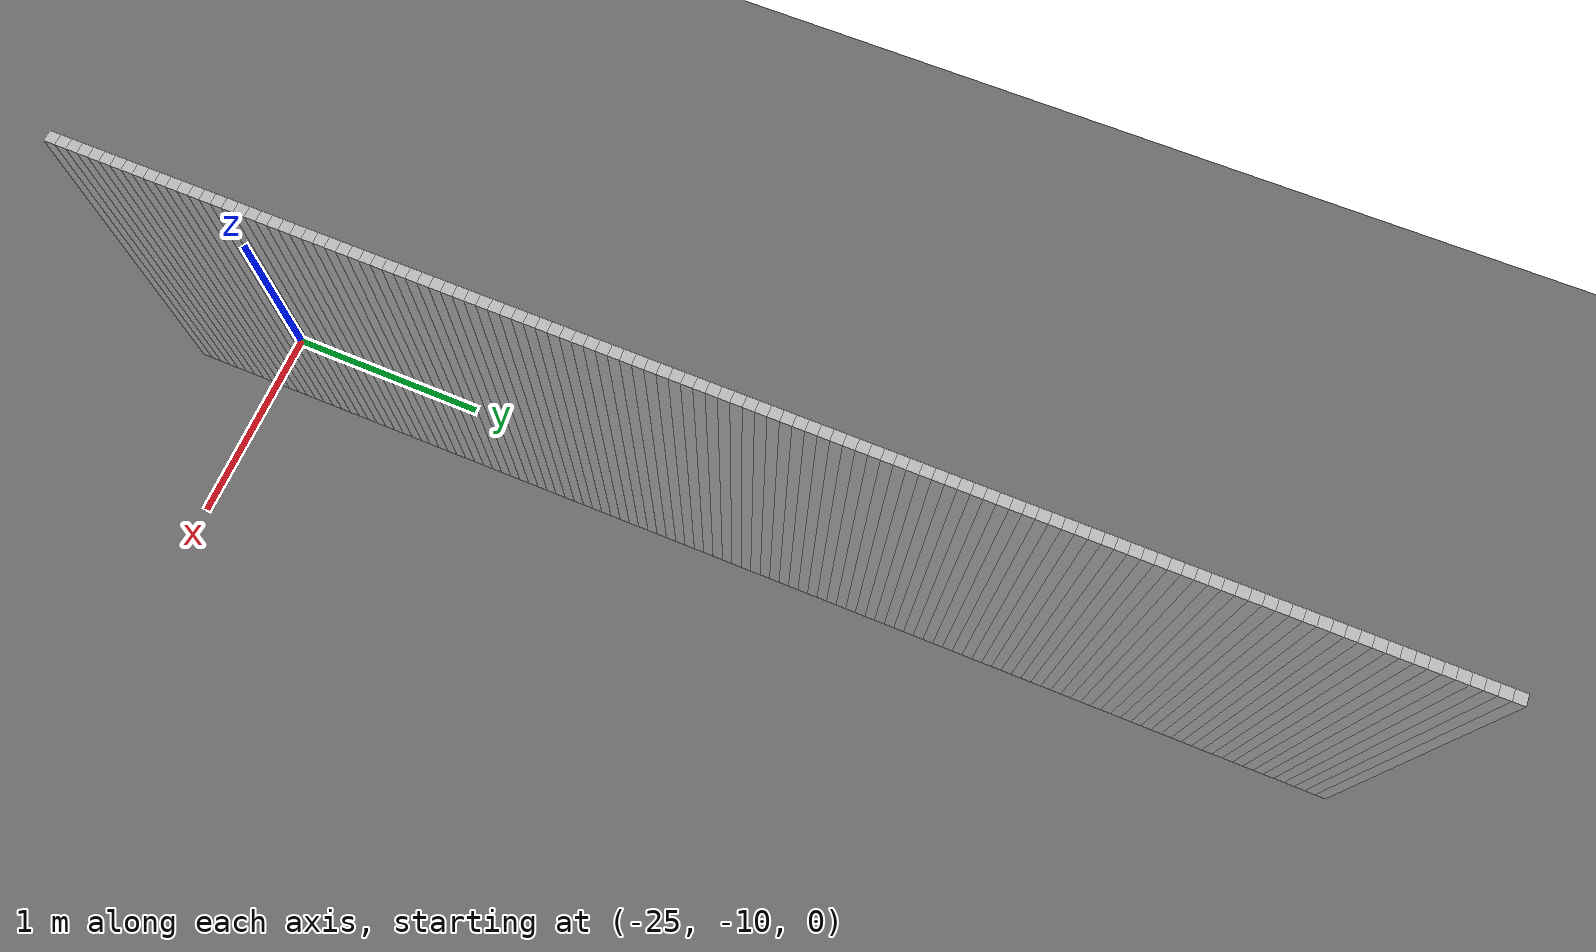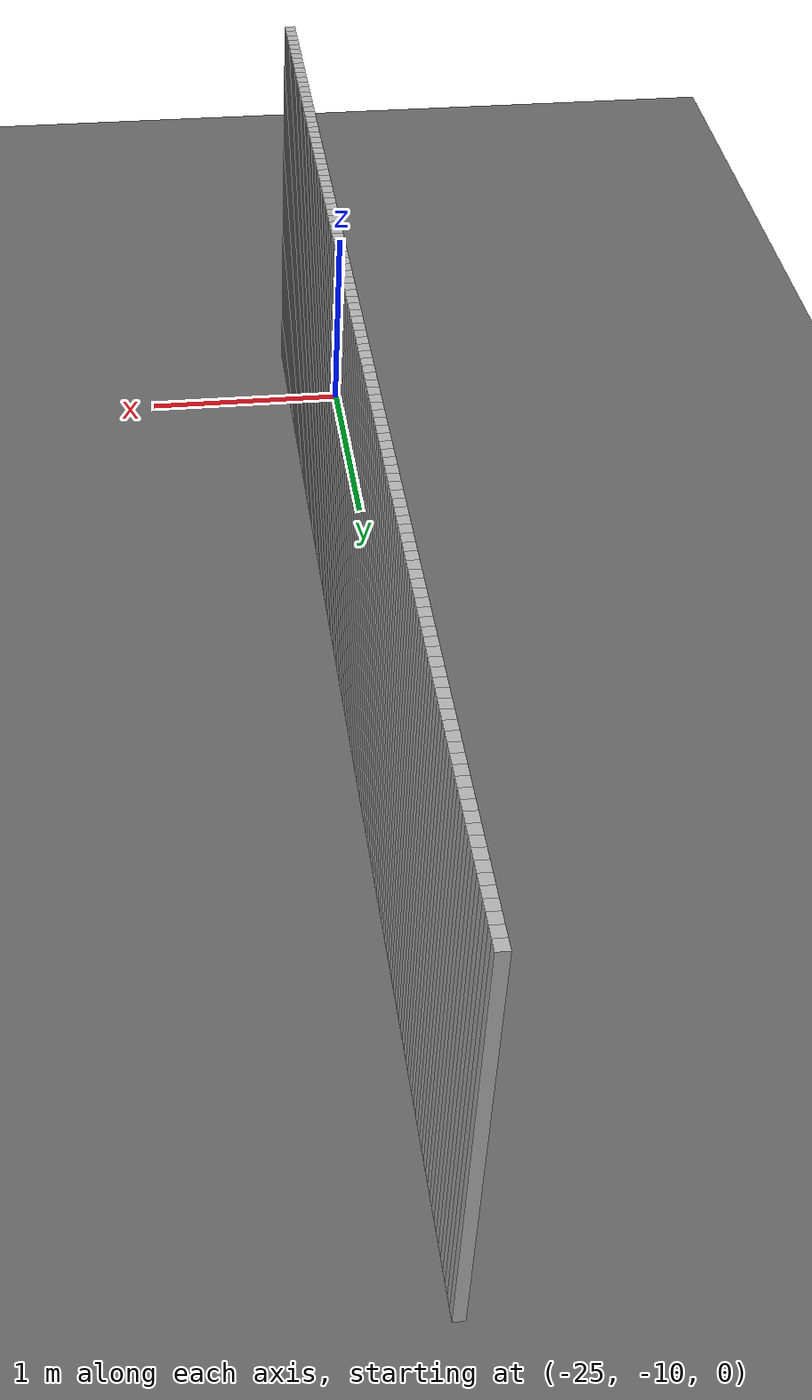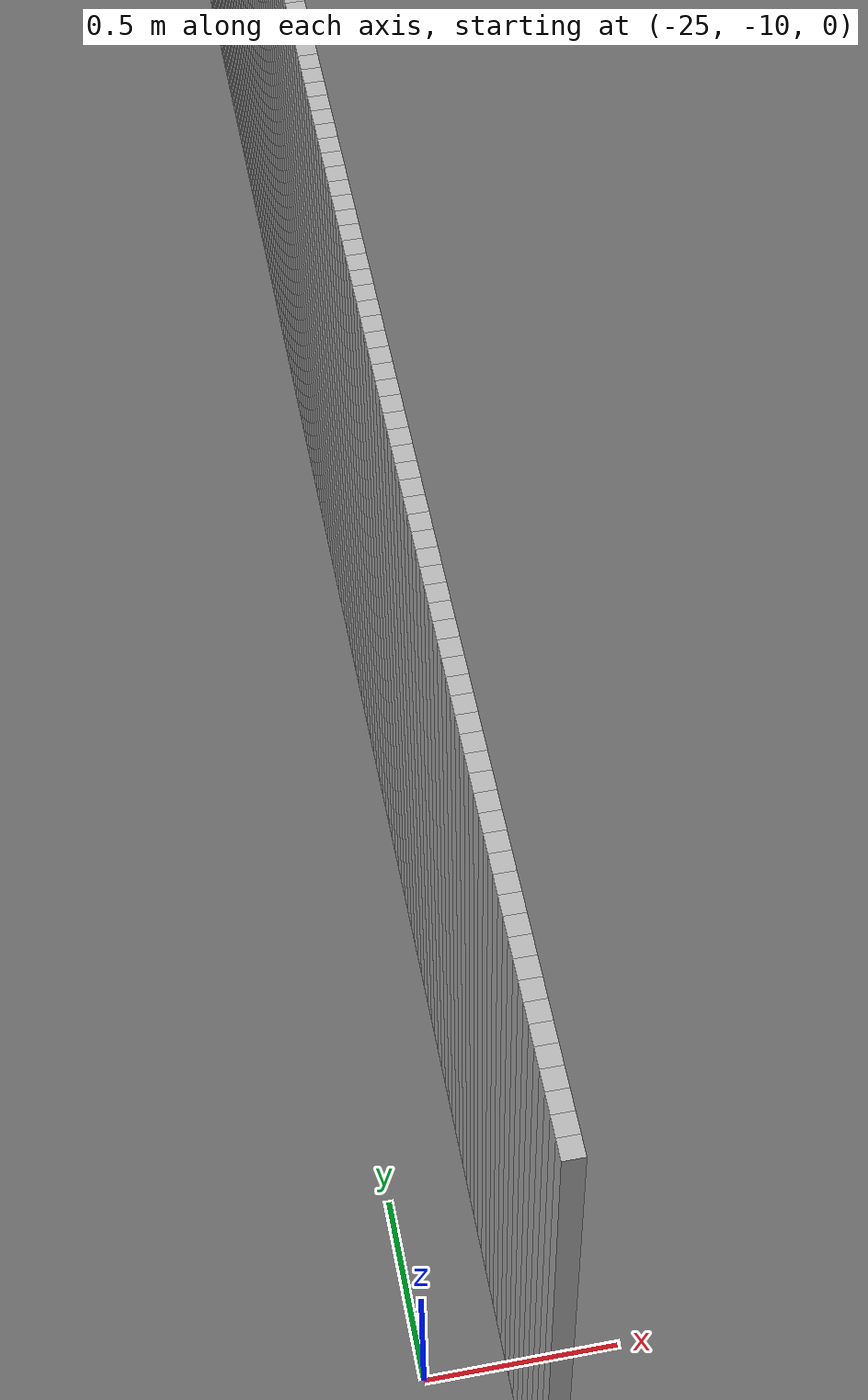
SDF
<sdf version="1.8">
 <world name="real_map">
  <model name="ground">
   <static>true</static>
   <link name="l">
    <collision name="c"><geometry><plane><normal>0 0 1</normal><size>100 100</size></plane></geometry></collision>
    <visual name="v">
     <geometry><plane><normal>0 0 1</normal><size>100 100</size></plane></geometry>
     <material><ambient>0.3 0.3 0.3 1</ambient><diffuse>0.4 0.4 0.4 1</diffuse></material>
    </visual>
   </link>
  </model>
  <model name="walls">
   <static>true</static>
   <link name="w1315">
    <pose>-24.766 -4.508 1.000 0 0 0</pose>
    <collision name="c"><geometry><box><size>0.050 0.050 2.000</size></box></geometry></collision>
    <visual name="v">
     <geometry><box><size>0.050 0.050 2.000</size></box></geometry>
     <material><ambient>0.7 0.7 0.7 1</ambient><diffuse>0.7 0.7 0.7 1</diffuse></material>
    </visual>
   </link>
   <link name="w1317">
    <pose>-24.766 -4.558 1.000 0 0 0</pose>
    <collision name="c"><geometry><box><size>0.050 0.050 2.000</size></box></geometry></collision>
    <visual name="v">
     <geometry><box><size>0.050 0.050 2.000</size></box></geometry>
     <material><ambient>0.7 0.7 0.7 1</ambient><diffuse>0.7 0.7 0.7 1</diffuse></material>
    </visual>
   </link>
   <link name="w1319">
    <pose>-24.766 -4.608 1.000 0 0 0</pose>
    <collision name="c"><geometry><box><size>0.050 0.050 2.000</size></box></geometry></collision>
    <visual name="v">
     <geometry><box><size>0.050 0.050 2.000</size></box></geometry>
     <material><ambient>0.7 0.7 0.7 1</ambient><diffuse>0.7 0.7 0.7 1</diffuse></material>
    </visual>
   </link>
   <link name="w1321">
    <pose>-24.766 -4.658 1.000 0 0 0</pose>
    <collision name="c"><geometry><box><size>0.050 0.050 2.000</size></box></geometry></collision>
    <visual name="v">
     <geometry><box><size>0.050 0.050 2.000</size></box></geometry>
     <material><ambient>0.7 0.7 0.7 1</ambient><diffuse>0.7 0.7 0.7 1</diffuse></material>
    </visual>
   </link>
   <link name="w1323">
    <pose>-24.766 -4.708 1.000 0 0 0</pose>
    <collision name="c"><geometry><box><size>0.050 0.050 2.000</size></box></geometry></collision>
    <visual name="v">
     <geometry><box><size>0.050 0.050 2.000</size></box></geometry>
     <material><ambient>0.7 0.7 0.7 1</ambient><diffuse>0.7 0.7 0.7 1</diffuse></material>
    </visual>
   </link>
   <link name="w1325">
    <pose>-24.766 -4.758 1.000 0 0 0</pose>
    <collision name="c"><geometry><box><size>0.050 0.050 2.000</size></box></geometry></collision>
    <visual name="v">
     <geometry><box><size>0.050 0.050 2.000</size></box></geometry>
     <material><ambient>0.7 0.7 0.7 1</ambient><diffuse>0.7 0.7 0.7 1</diffuse></material>
    </visual>
   </link>
   <link name="w1327">
    <pose>-24.766 -4.808 1.000 0 0 0</pose>
    <collision name="c"><geometry><box><size>0.050 0.050 2.000</size></box></geometry></collision>
    <visual name="v">
     <geometry><box><size>0.050 0.050 2.000</size></box></geometry>
     <material><ambient>0.7 0.7 0.7 1</ambient><diffuse>0.7 0.7 0.7 1</diffuse></material>
    </visual>
   </link>
   <link name="w1329">
    <pose>-24.766 -4.858 1.000 0 0 0</pose>
    <collision name="c"><geometry><box><size>0.050 0.050 2.000</size></box></geometry></collision>
    <visual name="v">
     <geometry><box><size>0.050 0.050 2.000</size></box></geometry>
     <material><ambient>0.7 0.7 0.7 1</ambient><diffuse>0.7 0.7 0.7 1</diffuse></material>
    </visual>
   </link>
   <link name="w1331">
    <pose>-24.766 -4.908 1.000 0 0 0</pose>
    <collision name="c"><geometry><box><size>0.050 0.050 2.000</size></box></geometry></collision>
    <visual name="v">
     <geometry><box><size>0.050 0.050 2.000</size></box></geometry>
     <material><ambient>0.7 0.7 0.7 1</ambient><diffuse>0.7 0.7 0.7 1</diffuse></material>
    </visual>
   </link>
   <link name="w1333">
    <pose>-24.766 -4.958 1.000 0 0 0</pose>
    <collision name="c"><geometry><box><size>0.050 0.050 2.000</size></box></geometry></collision>
    <visual name="v">
     <geometry><box><size>0.050 0.050 2.000</size></box></geometry>
     <material><ambient>0.7 0.7 0.7 1</ambient><diffuse>0.7 0.7 0.7 1</diffuse></material>
    </visual>
   </link>
   <link name="w1335">
    <pose>-24.766 -5.008 1.000 0 0 0</pose>
    <collision name="c"><geometry><box><size>0.050 0.050 2.000</size></box></geometry></collision>
    <visual name="v">
     <geometry><box><size>0.050 0.050 2.000</size></box></geometry>
     <material><ambient>0.7 0.7 0.7 1</ambient><diffuse>0.7 0.7 0.7 1</diffuse></material>
    </visual>
   </link>
   <link name="w1337">
    <pose>-24.766 -5.058 1.000 0 0 0</pose>
    <collision name="c"><geometry><box><size>0.050 0.050 2.000</size></box></geometry></collision>
    <visual name="v">
     <geometry><box><size>0.050 0.050 2.000</size></box></geometry>
     <material><ambient>0.7 0.7 0.7 1</ambient><diffuse>0.7 0.7 0.7 1</diffuse></material>
    </visual>
   </link>
   <link name="w1339">
    <pose>-24.766 -5.108 1.000 0 0 0</pose>
    <collision name="c"><geometry><box><size>0.050 0.050 2.000</size></box></geometry></collision>
    <visual name="v">
     <geometry><box><size>0.050 0.050 2.000</size></box></geometry>
     <material><ambient>0.7 0.7 0.7 1</ambient><diffuse>0.7 0.7 0.7 1</diffuse></material>
    </visual>
   </link>
   <link name="w1341">
    <pose>-24.766 -5.158 1.000 0 0 0</pose>
    <collision name="c"><geometry><box><size>0.050 0.050 2.000</size></box></geometry></collision>
    <visual name="v">
     <geometry><box><size>0.050 0.050 2.000</size></box></geometry>
     <material><ambient>0.7 0.7 0.7 1</ambient><diffuse>0.7 0.7 0.7 1</diffuse></material>
    </visual>
   </link>
   <link name="w1343">
    <pose>-24.766 -5.208 1.000 0 0 0</pose>
    <collision name="c"><geometry><box><size>0.050 0.050 2.000</size></box></geometry></collision>
    <visual name="v">
     <geometry><box><size>0.050 0.050 2.000</size></box></geometry>
     <material><ambient>0.7 0.7 0.7 1</ambient><diffuse>0.7 0.7 0.7 1</diffuse></material>
    </visual>
   </link>
   <link name="w1345">
    <pose>-24.766 -5.258 1.000 0 0 0</pose>
    <collision name="c"><geometry><box><size>0.050 0.050 2.000</size></box></geometry></collision>
    <visual name="v">
     <geometry><box><size>0.050 0.050 2.000</size></box></geometry>
     <material><ambient>0.7 0.7 0.7 1</ambient><diffuse>0.7 0.7 0.7 1</diffuse></material>
    </visual>
   </link>
   <link name="w1347">
    <pose>-24.766 -5.308 1.000 0 0 0</pose>
    <collision name="c"><geometry><box><size>0.050 0.050 2.000</size></box></geometry></collision>
    <visual name="v">
     <geometry><box><size>0.050 0.050 2.000</size></box></geometry>
     <material><ambient>0.7 0.7 0.7 1</ambient><diffuse>0.7 0.7 0.7 1</diffuse></material>
    </visual>
   </link>
   <link name="w1349">
    <pose>-24.766 -5.358 1.000 0 0 0</pose>
    <collision name="c"><geometry><box><size>0.050 0.050 2.000</size></box></geometry></collision>
    <visual name="v">
     <geometry><box><size>0.050 0.050 2.000</size></box></geometry>
     <material><ambient>0.7 0.7 0.7 1</ambient><diffuse>0.7 0.7 0.7 1</diffuse></material>
    </visual>
   </link>
   <link name="w1351">
    <pose>-24.766 -5.408 1.000 0 0 0</pose>
    <collision name="c"><geometry><box><size>0.050 0.050 2.000</size></box></geometry></collision>
    <visual name="v">
     <geometry><box><size>0.050 0.050 2.000</size></box></geometry>
     <material><ambient>0.7 0.7 0.7 1</ambient><diffuse>0.7 0.7 0.7 1</diffuse></material>
    </visual>
   </link>
   <link name="w1353">
    <pose>-24.766 -5.458 1.000 0 0 0</pose>
    <collision name="c"><geometry><box><size>0.050 0.050 2.000</size></box></geometry></collision>
    <visual name="v">
     <geometry><box><size>0.050 0.050 2.000</size></box></geometry>
     <material><ambient>0.7 0.7 0.7 1</ambient><diffuse>0.7 0.7 0.7 1</diffuse></material>
    </visual>
   </link>
   <link name="w1355">
    <pose>-24.766 -5.508 1.000 0 0 0</pose>
    <collision name="c"><geometry><box><size>0.050 0.050 2.000</size></box></geometry></collision>
    <visual name="v">
     <geometry><box><size>0.050 0.050 2.000</size></box></geometry>
     <material><ambient>0.7 0.7 0.7 1</ambient><diffuse>0.7 0.7 0.7 1</diffuse></material>
    </visual>
   </link>
   <link name="w1357">
    <pose>-24.766 -5.558 1.000 0 0 0</pose>
    <collision name="c"><geometry><box><size>0.050 0.050 2.000</size></box></geometry></collision>
    <visual name="v">
     <geometry><box><size>0.050 0.050 2.000</size></box></geometry>
     <material><ambient>0.7 0.7 0.7 1</ambient><diffuse>0.7 0.7 0.7 1</diffuse></material>
    </visual>
   </link>
   <link name="w1359">
    <pose>-24.766 -5.608 1.000 0 0 0</pose>
    <collision name="c"><geometry><box><size>0.050 0.050 2.000</size></box></geometry></collision>
    <visual name="v">
     <geometry><box><size>0.050 0.050 2.000</size></box></geometry>
     <material><ambient>0.7 0.7 0.7 1</ambient><diffuse>0.7 0.7 0.7 1</diffuse></material>
    </visual>
   </link>
   <link name="w1361">
    <pose>-24.766 -5.658 1.000 0 0 0</pose>
    <collision name="c"><geometry><box><size>0.050 0.050 2.000</size></box></geometry></collision>
    <visual name="v">
     <geometry><box><size>0.050 0.050 2.000</size></box></geometry>
     <material><ambient>0.7 0.7 0.7 1</ambient><diffuse>0.7 0.7 0.7 1</diffuse></material>
    </visual>
   </link>
   <link name="w1363">
    <pose>-24.766 -5.708 1.000 0 0 0</pose>
    <collision name="c"><geometry><box><size>0.050 0.050 2.000</size></box></geometry></collision>
    <visual name="v">
     <geometry><box><size>0.050 0.050 2.000</size></box></geometry>
     <material><ambient>0.7 0.7 0.7 1</ambient><diffuse>0.7 0.7 0.7 1</diffuse></material>
    </visual>
   </link>
   <link name="w1365">
    <pose>-24.766 -5.758 1.000 0 0 0</pose>
    <collision name="c"><geometry><box><size>0.050 0.050 2.000</size></box></geometry></collision>
    <visual name="v">
     <geometry><box><size>0.050 0.050 2.000</size></box></geometry>
     <material><ambient>0.7 0.7 0.7 1</ambient><diffuse>0.7 0.7 0.7 1</diffuse></material>
    </visual>
   </link>
   <link name="w1367">
    <pose>-24.766 -5.808 1.000 0 0 0</pose>
    <collision name="c"><geometry><box><size>0.050 0.050 2.000</size></box></geometry></collision>
    <visual name="v">
     <geometry><box><size>0.050 0.050 2.000</size></box></geometry>
     <material><ambient>0.7 0.7 0.7 1</ambient><diffuse>0.7 0.7 0.7 1</diffuse></material>
    </visual>
   </link>
   <link name="w1369">
    <pose>-24.766 -5.858 1.000 0 0 0</pose>
    <collision name="c"><geometry><box><size>0.050 0.050 2.000</size></box></geometry></collision>
    <visual name="v">
     <geometry><box><size>0.050 0.050 2.000</size></box></geometry>
     <material><ambient>0.7 0.7 0.7 1</ambient><diffuse>0.7 0.7 0.7 1</diffuse></material>
    </visual>
   </link>
   <link name="w1371">
    <pose>-24.766 -5.908 1.000 0 0 0</pose>
    <collision name="c"><geometry><box><size>0.050 0.050 2.000</size></box></geometry></collision>
    <visual name="v">
     <geometry><box><size>0.050 0.050 2.000</size></box></geometry>
     <material><ambient>0.7 0.7 0.7 1</ambient><diffuse>0.7 0.7 0.7 1</diffuse></material>
    </visual>
   </link>
   <link name="w1373">
    <pose>-24.766 -5.958 1.000 0 0 0</pose>
    <collision name="c"><geometry><box><size>0.050 0.050 2.000</size></box></geometry></collision>
    <visual name="v">
     <geometry><box><size>0.050 0.050 2.000</size></box></geometry>
     <material><ambient>0.7 0.7 0.7 1</ambient><diffuse>0.7 0.7 0.7 1</diffuse></material>
    </visual>
   </link>
   <link name="w1375">
    <pose>-24.766 -6.008 1.000 0 0 0</pose>
    <collision name="c"><geometry><box><size>0.050 0.050 2.000</size></box></geometry></collision>
    <visual name="v">
     <geometry><box><size>0.050 0.050 2.000</size></box></geometry>
     <material><ambient>0.7 0.7 0.7 1</ambient><diffuse>0.7 0.7 0.7 1</diffuse></material>
    </visual>
   </link>
   <link name="w1377">
    <pose>-24.766 -6.058 1.000 0 0 0</pose>
    <collision name="c"><geometry><box><size>0.050 0.050 2.000</size></box></geometry></collision>
    <visual name="v">
     <geometry><box><size>0.050 0.050 2.000</size></box></geometry>
     <material><ambient>0.7 0.7 0.7 1</ambient><diffuse>0.7 0.7 0.7 1</diffuse></material>
    </visual>
   </link>
   <link name="w1379">
    <pose>-24.766 -6.108 1.000 0 0 0</pose>
    <collision name="c"><geometry><box><size>0.050 0.050 2.000</size></box></geometry></collision>
    <visual name="v">
     <geometry><box><size>0.050 0.050 2.000</size></box></geometry>
     <material><ambient>0.7 0.7 0.7 1</ambient><diffuse>0.7 0.7 0.7 1</diffuse></material>
    </visual>
   </link>
   <link name="w1381">
    <pose>-24.766 -6.158 1.000 0 0 0</pose>
    <collision name="c"><geometry><box><size>0.050 0.050 2.000</size></box></geometry></collision>
    <visual name="v">
     <geometry><box><size>0.050 0.050 2.000</size></box></geometry>
     <material><ambient>0.7 0.7 0.7 1</ambient><diffuse>0.7 0.7 0.7 1</diffuse></material>
    </visual>
   </link>
   <link name="w1383">
    <pose>-24.766 -6.208 1.000 0 0 0</pose>
    <collision name="c"><geometry><box><size>0.050 0.050 2.000</size></box></geometry></collision>
    <visual name="v">
     <geometry><box><size>0.050 0.050 2.000</size></box></geometry>
     <material><ambient>0.7 0.7 0.7 1</ambient><diffuse>0.7 0.7 0.7 1</diffuse></material>
    </visual>
   </link>
   <link name="w1385">
    <pose>-24.766 -6.258 1.000 0 0 0</pose>
    <collision name="c"><geometry><box><size>0.050 0.050 2.000</size></box></geometry></collision>
    <visual name="v">
     <geometry><box><size>0.050 0.050 2.000</size></box></geometry>
     <material><ambient>0.7 0.7 0.7 1</ambient><diffuse>0.7 0.7 0.7 1</diffuse></material>
    </visual>
   </link>
   <link name="w1387">
    <pose>-24.766 -6.308 1.000 0 0 0</pose>
    <collision name="c"><geometry><box><size>0.050 0.050 2.000</size></box></geometry></collision>
    <visual name="v">
     <geometry><box><size>0.050 0.050 2.000</size></box></geometry>
     <material><ambient>0.7 0.7 0.7 1</ambient><diffuse>0.7 0.7 0.7 1</diffuse></material>
    </visual>
   </link>
   <link name="w1389">
    <pose>-24.766 -6.358 1.000 0 0 0</pose>
    <collision name="c"><geometry><box><size>0.050 0.050 2.000</size></box></geometry></collision>
    <visual name="v">
     <geometry><box><size>0.050 0.050 2.000</size></box></geometry>
     <material><ambient>0.7 0.7 0.7 1</ambient><diffuse>0.7 0.7 0.7 1</diffuse></material>
    </visual>
   </link>
   <link name="w1391">
    <pose>-24.766 -6.408 1.000 0 0 0</pose>
    <collision name="c"><geometry><box><size>0.050 0.050 2.000</size></box></geometry></collision>
    <visual name="v">
     <geometry><box><size>0.050 0.050 2.000</size></box></geometry>
     <material><ambient>0.7 0.7 0.7 1</ambient><diffuse>0.7 0.7 0.7 1</diffuse></material>
    </visual>
   </link>
   <link name="w1393">
    <pose>-24.766 -6.458 1.000 0 0 0</pose>
    <collision name="c"><geometry><box><size>0.050 0.050 2.000</size></box></geometry></collision>
    <visual name="v">
     <geometry><box><size>0.050 0.050 2.000</size></box></geometry>
     <material><ambient>0.7 0.7 0.7 1</ambient><diffuse>0.7 0.7 0.7 1</diffuse></material>
    </visual>
   </link>
   <link name="w1395">
    <pose>-24.766 -6.508 1.000 0 0 0</pose>
    <collision name="c"><geometry><box><size>0.050 0.050 2.000</size></box></geometry></collision>
    <visual name="v">
     <geometry><box><size>0.050 0.050 2.000</size></box></geometry>
     <material><ambient>0.7 0.7 0.7 1</ambient><diffuse>0.7 0.7 0.7 1</diffuse></material>
    </visual>
   </link>
   <link name="w1397">
    <pose>-24.766 -6.558 1.000 0 0 0</pose>
    <collision name="c"><geometry><box><size>0.050 0.050 2.000</size></box></geometry></collision>
    <visual name="v">
     <geometry><box><size>0.050 0.050 2.000</size></box></geometry>
     <material><ambient>0.7 0.7 0.7 1</ambient><diffuse>0.7 0.7 0.7 1</diffuse></material>
    </visual>
   </link>
   <link name="w1399">
    <pose>-24.766 -6.608 1.000 0 0 0</pose>
    <collision name="c"><geometry><box><size>0.050 0.050 2.000</size></box></geometry></collision>
    <visual name="v">
     <geometry><box><size>0.050 0.050 2.000</size></box></geometry>
     <material><ambient>0.7 0.7 0.7 1</ambient><diffuse>0.7 0.7 0.7 1</diffuse></material>
    </visual>
   </link>
   <link name="w1401">
    <pose>-24.766 -6.658 1.000 0 0 0</pose>
    <collision name="c"><geometry><box><size>0.050 0.050 2.000</size></box></geometry></collision>
    <visual name="v">
     <geometry><box><size>0.050 0.050 2.000</size></box></geometry>
     <material><ambient>0.7 0.7 0.7 1</ambient><diffuse>0.7 0.7 0.7 1</diffuse></material>
    </visual>
   </link>
   <link name="w1403">
    <pose>-24.766 -6.708 1.000 0 0 0</pose>
    <collision name="c"><geometry><box><size>0.050 0.050 2.000</size></box></geometry></collision>
    <visual name="v">
     <geometry><box><size>0.050 0.050 2.000</size></box></geometry>
     <material><ambient>0.7 0.7 0.7 1</ambient><diffuse>0.7 0.7 0.7 1</diffuse></material>
    </visual>
   </link>
   <link name="w1405">
    <pose>-24.766 -6.758 1.000 0 0 0</pose>
    <collision name="c"><geometry><box><size>0.050 0.050 2.000</size></box></geometry></collision>
    <visual name="v">
     <geometry><box><size>0.050 0.050 2.000</size></box></geometry>
     <material><ambient>0.7 0.7 0.7 1</ambient><diffuse>0.7 0.7 0.7 1</diffuse></material>
    </visual>
   </link>
   <link name="w1407">
    <pose>-24.766 -6.808 1.000 0 0 0</pose>
    <collision name="c"><geometry><box><size>0.050 0.050 2.000</size></box></geometry></collision>
    <visual name="v">
     <geometry><box><size>0.050 0.050 2.000</size></box></geometry>
     <material><ambient>0.7 0.7 0.7 1</ambient><diffuse>0.7 0.7 0.7 1</diffuse></material>
    </visual>
   </link>
   <link name="w1409">
    <pose>-24.766 -6.858 1.000 0 0 0</pose>
    <collision name="c"><geometry><box><size>0.050 0.050 2.000</size></box></geometry></collision>
    <visual name="v">
     <geometry><box><size>0.050 0.050 2.000</size></box></geometry>
     <material><ambient>0.7 0.7 0.7 1</ambient><diffuse>0.7 0.7 0.7 1</diffuse></material>
    </visual>
   </link>
   <link name="w1411">
    <pose>-24.766 -6.908 1.000 0 0 0</pose>
    <collision name="c"><geometry><box><size>0.050 0.050 2.000</size></box></geometry></collision>
    <visual name="v">
     <geometry><box><size>0.050 0.050 2.000</size></box></geometry>
     <material><ambient>0.7 0.7 0.7 1</ambient><diffuse>0.7 0.7 0.7 1</diffuse></material>
    </visual>
   </link>
   <link name="w1413">
    <pose>-24.766 -6.958 1.000 0 0 0</pose>
    <collision name="c"><geometry><box><size>0.050 0.050 2.000</size></box></geometry></collision>
    <visual name="v">
     <geometry><box><size>0.050 0.050 2.000</size></box></geometry>
     <material><ambient>0.7 0.7 0.7 1</ambient><diffuse>0.7 0.7 0.7 1</diffuse></material>
    </visual>
   </link>
   <link name="w1415">
    <pose>-24.766 -7.008 1.000 0 0 0</pose>
    <collision name="c"><geometry><box><size>0.050 0.050 2.000</size></box></geometry></collision>
    <visual name="v">
     <geometry><box><size>0.050 0.050 2.000</size></box></geometry>
     <material><ambient>0.7 0.7 0.7 1</ambient><diffuse>0.7 0.7 0.7 1</diffuse></material>
    </visual>
   </link>
   <link name="w1417">
    <pose>-24.766 -7.058 1.000 0 0 0</pose>
    <collision name="c"><geometry><box><size>0.050 0.050 2.000</size></box></geometry></collision>
    <visual name="v">
     <geometry><box><size>0.050 0.050 2.000</size></box></geometry>
     <material><ambient>0.7 0.7 0.7 1</ambient><diffuse>0.7 0.7 0.7 1</diffuse></material>
    </visual>
   </link>
   <link name="w1419">
    <pose>-24.766 -7.108 1.000 0 0 0</pose>
    <collision name="c"><geometry><box><size>0.050 0.050 2.000</size></box></geometry></collision>
    <visual name="v">
     <geometry><box><size>0.050 0.050 2.000</size></box></geometry>
     <material><ambient>0.7 0.7 0.7 1</ambient><diffuse>0.7 0.7 0.7 1</diffuse></material>
    </visual>
   </link>
   <link name="w1421">
    <pose>-24.766 -7.158 1.000 0 0 0</pose>
    <collision name="c"><geometry><box><size>0.050 0.050 2.000</size></box></geometry></collision>
    <visual name="v">
     <geometry><box><size>0.050 0.050 2.000</size></box></geometry>
     <material><ambient>0.7 0.7 0.7 1</ambient><diffuse>0.7 0.7 0.7 1</diffuse></material>
    </visual>
   </link>
   <link name="w1423">
    <pose>-24.766 -7.208 1.000 0 0 0</pose>
    <collision name="c"><geometry><box><size>0.050 0.050 2.000</size></box></geometry></collision>
    <visual name="v">
     <geometry><box><size>0.050 0.050 2.000</size></box></geometry>
     <material><ambient>0.7 0.7 0.7 1</ambient><diffuse>0.7 0.7 0.7 1</diffuse></material>
    </visual>
   </link>
   <link name="w1425">
    <pose>-24.766 -7.258 1.000 0 0 0</pose>
    <collision name="c"><geometry><box><size>0.050 0.050 2.000</size></box></geometry></collision>
    <visual name="v">
     <geometry><box><size>0.050 0.050 2.000</size></box></geometry>
     <material><ambient>0.7 0.7 0.7 1</ambient><diffuse>0.7 0.7 0.7 1</diffuse></material>
    </visual>
   </link>
   <link name="w1427">
    <pose>-24.766 -7.308 1.000 0 0 0</pose>
    <collision name="c"><geometry><box><size>0.050 0.050 2.000</size></box></geometry></collision>
    <visual name="v">
     <geometry><box><size>0.050 0.050 2.000</size></box></geometry>
     <material><ambient>0.7 0.7 0.7 1</ambient><diffuse>0.7 0.7 0.7 1</diffuse></material>
    </visual>
   </link>
   <link name="w1429">
    <pose>-24.766 -7.358 1.000 0 0 0</pose>
    <collision name="c"><geometry><box><size>0.050 0.050 2.000</size></box></geometry></collision>
    <visual name="v">
     <geometry><box><size>0.050 0.050 2.000</size></box></geometry>
     <material><ambient>0.7 0.7 0.7 1</ambient><diffuse>0.7 0.7 0.7 1</diffuse></material>
    </visual>
   </link>
   <link name="w1431">
    <pose>-24.766 -7.408 1.000 0 0 0</pose>
    <collision name="c"><geometry><box><size>0.050 0.050 2.000</size></box></geometry></collision>
    <visual name="v">
     <geometry><box><size>0.050 0.050 2.000</size></box></geometry>
     <material><ambient>0.7 0.7 0.7 1</ambient><diffuse>0.7 0.7 0.7 1</diffuse></material>
    </visual>
   </link>
   <link name="w1433">
    <pose>-24.766 -7.458 1.000 0 0 0</pose>
    <collision name="c"><geometry><box><size>0.050 0.050 2.000</size></box></geometry></collision>
    <visual name="v">
     <geometry><box><size>0.050 0.050 2.000</size></box></geometry>
     <material><ambient>0.7 0.7 0.7 1</ambient><diffuse>0.7 0.7 0.7 1</diffuse></material>
    </visual>
   </link>
   <link name="w1435">
    <pose>-24.766 -7.508 1.000 0 0 0</pose>
    <collision name="c"><geometry><box><size>0.050 0.050 2.000</size></box></geometry></collision>
    <visual name="v">
     <geometry><box><size>0.050 0.050 2.000</size></box></geometry>
     <material><ambient>0.7 0.7 0.7 1</ambient><diffuse>0.7 0.7 0.7 1</diffuse></material>
    </visual>
   </link>
   <link name="w1437">
    <pose>-24.766 -7.558 1.000 0 0 0</pose>
    <collision name="c"><geometry><box><size>0.050 0.050 2.000</size></box></geometry></collision>
    <visual name="v">
     <geometry><box><size>0.050 0.050 2.000</size></box></geometry>
     <material><ambient>0.7 0.7 0.7 1</ambient><diffuse>0.7 0.7 0.7 1</diffuse></material>
    </visual>
   </link>
   <link name="w1439">
    <pose>-24.766 -7.608 1.000 0 0 0</pose>
    <collision name="c"><geometry><box><size>0.050 0.050 2.000</size></box></geometry></collision>
    <visual name="v">
     <geometry><box><size>0.050 0.050 2.000</size></box></geometry>
     <material><ambient>0.7 0.7 0.7 1</ambient><diffuse>0.7 0.7 0.7 1</diffuse></material>
    </visual>
   </link>
   <link name="w1441">
    <pose>-24.766 -7.658 1.000 0 0 0</pose>
    <collision name="c"><geometry><box><size>0.050 0.050 2.000</size></box></geometry></collision>
    <visual name="v">
     <geometry><box><size>0.050 0.050 2.000</size></box></geometry>
     <material><ambient>0.7 0.7 0.7 1</ambient><diffuse>0.7 0.7 0.7 1</diffuse></material>
    </visual>
   </link>
   <link name="w1443">
    <pose>-24.766 -7.708 1.000 0 0 0</pose>
    <collision name="c"><geometry><box><size>0.050 0.050 2.000</size></box></geometry></collision>
    <visual name="v">
     <geometry><box><size>0.050 0.050 2.000</size></box></geometry>
     <material><ambient>0.7 0.7 0.7 1</ambient><diffuse>0.7 0.7 0.7 1</diffuse></material>
    </visual>
   </link>
   <link name="w1445">
    <pose>-24.766 -7.758 1.000 0 0 0</pose>
    <collision name="c"><geometry><box><size>0.050 0.050 2.000</size></box></geometry></collision>
    <visual name="v">
     <geometry><box><size>0.050 0.050 2.000</size></box></geometry>
     <material><ambient>0.7 0.7 0.7 1</ambient><diffuse>0.7 0.7 0.7 1</diffuse></material>
    </visual>
   </link>
   <link name="w1447">
    <pose>-24.766 -7.808 1.000 0 0 0</pose>
    <collision name="c"><geometry><box><size>0.050 0.050 2.000</size></box></geometry></collision>
    <visual name="v">
     <geometry><box><size>0.050 0.050 2.000</size></box></geometry>
     <material><ambient>0.7 0.7 0.7 1</ambient><diffuse>0.7 0.7 0.7 1</diffuse></material>
    </visual>
   </link>
   <link name="w1449">
    <pose>-24.766 -7.858 1.000 0 0 0</pose>
    <collision name="c"><geometry><box><size>0.050 0.050 2.000</size></box></geometry></collision>
    <visual name="v">
     <geometry><box><size>0.050 0.050 2.000</size></box></geometry>
     <material><ambient>0.7 0.7 0.7 1</ambient><diffuse>0.7 0.7 0.7 1</diffuse></material>
    </visual>
   </link>
   <link name="w1451">
    <pose>-24.766 -7.908 1.000 0 0 0</pose>
    <collision name="c"><geometry><box><size>0.050 0.050 2.000</size></box></geometry></collision>
    <visual name="v">
     <geometry><box><size>0.050 0.050 2.000</size></box></geometry>
     <material><ambient>0.7 0.7 0.7 1</ambient><diffuse>0.7 0.7 0.7 1</diffuse></material>
    </visual>
   </link>
   <link name="w1453">
    <pose>-24.766 -7.958 1.000 0 0 0</pose>
    <collision name="c"><geometry><box><size>0.050 0.050 2.000</size></box></geometry></collision>
    <visual name="v">
     <geometry><box><size>0.050 0.050 2.000</size></box></geometry>
     <material><ambient>0.7 0.7 0.7 1</ambient><diffuse>0.7 0.7 0.7 1</diffuse></material>
    </visual>
   </link>
   <link name="w1455">
    <pose>-24.766 -8.008 1.000 0 0 0</pose>
    <collision name="c"><geometry><box><size>0.050 0.050 2.000</size></box></geometry></collision>
    <visual name="v">
     <geometry><box><size>0.050 0.050 2.000</size></box></geometry>
     <material><ambient>0.7 0.7 0.7 1</ambient><diffuse>0.7 0.7 0.7 1</diffuse></material>
    </visual>
   </link>
   <link name="w1457">
    <pose>-24.766 -8.058 1.000 0 0 0</pose>
    <collision name="c"><geometry><box><size>0.050 0.050 2.000</size></box></geometry></collision>
    <visual name="v">
     <geometry><box><size>0.050 0.050 2.000</size></box></geometry>
     <material><ambient>0.7 0.7 0.7 1</ambient><diffuse>0.7 0.7 0.7 1</diffuse></material>
    </visual>
   </link>
   <link name="w1459">
    <pose>-24.766 -8.108 1.000 0 0 0</pose>
    <collision name="c"><geometry><box><size>0.050 0.050 2.000</size></box></geometry></collision>
    <visual name="v">
     <geometry><box><size>0.050 0.050 2.000</size></box></geometry>
     <material><ambient>0.7 0.7 0.7 1</ambient><diffuse>0.7 0.7 0.7 1</diffuse></material>
    </visual>
   </link>
   <link name="w1461">
    <pose>-24.766 -8.158 1.000 0 0 0</pose>
    <collision name="c"><geometry><box><size>0.050 0.050 2.000</size></box></geometry></collision>
    <visual name="v">
     <geometry><box><size>0.050 0.050 2.000</size></box></geometry>
     <material><ambient>0.7 0.7 0.7 1</ambient><diffuse>0.7 0.7 0.7 1</diffuse></material>
    </visual>
   </link>
   <link name="w1463">
    <pose>-24.766 -8.208 1.000 0 0 0</pose>
    <collision name="c"><geometry><box><size>0.050 0.050 2.000</size></box></geometry></collision>
    <visual name="v">
     <geometry><box><size>0.050 0.050 2.000</size></box></geometry>
     <material><ambient>0.7 0.7 0.7 1</ambient><diffuse>0.7 0.7 0.7 1</diffuse></material>
    </visual>
   </link>
   <link name="w1465">
    <pose>-24.766 -8.258 1.000 0 0 0</pose>
    <collision name="c"><geometry><box><size>0.050 0.050 2.000</size></box></geometry></collision>
    <visual name="v">
     <geometry><box><size>0.050 0.050 2.000</size></box></geometry>
     <material><ambient>0.7 0.7 0.7 1</ambient><diffuse>0.7 0.7 0.7 1</diffuse></material>
    </visual>
   </link>
   <link name="w1467">
    <pose>-24.766 -8.308 1.000 0 0 0</pose>
    <collision name="c"><geometry><box><size>0.050 0.050 2.000</size></box></geometry></collision>
    <visual name="v">
     <geometry><box><size>0.050 0.050 2.000</size></box></geometry>
     <material><ambient>0.7 0.7 0.7 1</ambient><diffuse>0.7 0.7 0.7 1</diffuse></material>
    </visual>
   </link>
   <link name="w1469">
    <pose>-24.766 -8.358 1.000 0 0 0</pose>
    <collision name="c"><geometry><box><size>0.050 0.050 2.000</size></box></geometry></collision>
    <visual name="v">
     <geometry><box><size>0.050 0.050 2.000</size></box></geometry>
     <material><ambient>0.7 0.7 0.7 1</ambient><diffuse>0.7 0.7 0.7 1</diffuse></material>
    </visual>
   </link>
   <link name="w1471">
    <pose>-24.766 -8.408 1.000 0 0 0</pose>
    <collision name="c"><geometry><box><size>0.050 0.050 2.000</size></box></geometry></collision>
    <visual name="v">
     <geometry><box><size>0.050 0.050 2.000</size></box></geometry>
     <material><ambient>0.7 0.7 0.7 1</ambient><diffuse>0.7 0.7 0.7 1</diffuse></material>
    </visual>
   </link>
   <link name="w1473">
    <pose>-24.766 -8.458 1.000 0 0 0</pose>
    <collision name="c"><geometry><box><size>0.050 0.050 2.000</size></box></geometry></collision>
    <visual name="v">
     <geometry><box><size>0.050 0.050 2.000</size></box></geometry>
     <material><ambient>0.7 0.7 0.7 1</ambient><diffuse>0.7 0.7 0.7 1</diffuse></material>
    </visual>
   </link>
   <link name="w1475">
    <pose>-24.766 -8.508 1.000 0 0 0</pose>
    <collision name="c"><geometry><box><size>0.050 0.050 2.000</size></box></geometry></collision>
    <visual name="v">
     <geometry><box><size>0.050 0.050 2.000</size></box></geometry>
     <material><ambient>0.7 0.7 0.7 1</ambient><diffuse>0.7 0.7 0.7 1</diffuse></material>
    </visual>
   </link>
   <link name="w1477">
    <pose>-24.766 -8.558 1.000 0 0 0</pose>
    <collision name="c"><geometry><box><size>0.050 0.050 2.000</size></box></geometry></collision>
    <visual name="v">
     <geometry><box><size>0.050 0.050 2.000</size></box></geometry>
     <material><ambient>0.7 0.7 0.7 1</ambient><diffuse>0.7 0.7 0.7 1</diffuse></material>
    </visual>
   </link>
   <link name="w1479">
    <pose>-24.766 -8.608 1.000 0 0 0</pose>
    <collision name="c"><geometry><box><size>0.050 0.050 2.000</size></box></geometry></collision>
    <visual name="v">
     <geometry><box><size>0.050 0.050 2.000</size></box></geometry>
     <material><ambient>0.7 0.7 0.7 1</ambient><diffuse>0.7 0.7 0.7 1</diffuse></material>
    </visual>
   </link>
   <link name="w1481">
    <pose>-24.766 -8.658 1.000 0 0 0</pose>
    <collision name="c"><geometry><box><size>0.050 0.050 2.000</size></box></geometry></collision>
    <visual name="v">
     <geometry><box><size>0.050 0.050 2.000</size></box></geometry>
     <material><ambient>0.7 0.7 0.7 1</ambient><diffuse>0.7 0.7 0.7 1</diffuse></material>
    </visual>
   </link>
   <link name="w1483">
    <pose>-24.766 -8.708 1.000 0 0 0</pose>
    <collision name="c"><geometry><box><size>0.050 0.050 2.000</size></box></geometry></collision>
    <visual name="v">
     <geometry><box><size>0.050 0.050 2.000</size></box></geometry>
     <material><ambient>0.7 0.7 0.7 1</ambient><diffuse>0.7 0.7 0.7 1</diffuse></material>
    </visual>
   </link>
   <link name="w1485">
    <pose>-24.766 -8.758 1.000 0 0 0</pose>
    <collision name="c"><geometry><box><size>0.050 0.050 2.000</size></box></geometry></collision>
    <visual name="v">
     <geometry><box><size>0.050 0.050 2.000</size></box></geometry>
     <material><ambient>0.7 0.7 0.7 1</ambient><diffuse>0.7 0.7 0.7 1</diffuse></material>
    </visual>
   </link>
   <link name="w1487">
    <pose>-24.766 -8.808 1.000 0 0 0</pose>
    <collision name="c"><geometry><box><size>0.050 0.050 2.000</size></box></geometry></collision>
    <visual name="v">
     <geometry><box><size>0.050 0.050 2.000</size></box></geometry>
     <material><ambient>0.7 0.7 0.7 1</ambient><diffuse>0.7 0.7 0.7 1</diffuse></material>
    </visual>
   </link>
   <link name="w1489">
    <pose>-24.766 -8.858 1.000 0 0 0</pose>
    <collision name="c"><geometry><box><size>0.050 0.050 2.000</size></box></geometry></collision>
    <visual name="v">
     <geometry><box><size>0.050 0.050 2.000</size></box></geometry>
     <material><ambient>0.7 0.7 0.7 1</ambient><diffuse>0.7 0.7 0.7 1</diffuse></material>
    </visual>
   </link>
   <link name="w1491">
    <pose>-24.766 -8.908 1.000 0 0 0</pose>
    <collision name="c"><geometry><box><size>0.050 0.050 2.000</size></box></geometry></collision>
    <visual name="v">
     <geometry><box><size>0.050 0.050 2.000</size></box></geometry>
     <material><ambient>0.7 0.7 0.7 1</ambient><diffuse>0.7 0.7 0.7 1</diffuse></material>
    </visual>
   </link>
   <link name="w1493">
    <pose>-24.766 -8.958 1.000 0 0 0</pose>
    <collision name="c"><geometry><box><size>0.050 0.050 2.000</size></box></geometry></collision>
    <visual name="v">
     <geometry><box><size>0.050 0.050 2.000</size></box></geometry>
     <material><ambient>0.7 0.7 0.7 1</ambient><diffuse>0.7 0.7 0.7 1</diffuse></material>
    </visual>
   </link>
   <link name="w1495">
    <pose>-24.766 -9.008 1.000 0 0 0</pose>
    <collision name="c"><geometry><box><size>0.050 0.050 2.000</size></box></geometry></collision>
    <visual name="v">
     <geometry><box><size>0.050 0.050 2.000</size></box></geometry>
     <material><ambient>0.7 0.7 0.7 1</ambient><diffuse>0.7 0.7 0.7 1</diffuse></material>
    </visual>
   </link>
   <link name="w1497">
    <pose>-24.766 -9.058 1.000 0 0 0</pose>
    <collision name="c"><geometry><box><size>0.050 0.050 2.000</size></box></geometry></collision>
    <visual name="v">
     <geometry><box><size>0.050 0.050 2.000</size></box></geometry>
     <material><ambient>0.7 0.7 0.7 1</ambient><diffuse>0.7 0.7 0.7 1</diffuse></material>
    </visual>
   </link>
   <link name="w1499">
    <pose>-24.766 -9.108 1.000 0 0 0</pose>
    <collision name="c"><geometry><box><size>0.050 0.050 2.000</size></box></geometry></collision>
    <visual name="v">
     <geometry><box><size>0.050 0.050 2.000</size></box></geometry>
     <material><ambient>0.7 0.7 0.7 1</ambient><diffuse>0.7 0.7 0.7 1</diffuse></material>
    </visual>
   </link>
   <link name="w1501">
    <pose>-24.766 -9.158 1.000 0 0 0</pose>
    <collision name="c"><geometry><box><size>0.050 0.050 2.000</size></box></geometry></collision>
    <visual name="v">
     <geometry><box><size>0.050 0.050 2.000</size></box></geometry>
     <material><ambient>0.7 0.7 0.7 1</ambient><diffuse>0.7 0.7 0.7 1</diffuse></material>
    </visual>
   </link>
   <link name="w1503">
    <pose>-24.766 -9.208 1.000 0 0 0</pose>
    <collision name="c"><geometry><box><size>0.050 0.050 2.000</size></box></geometry></collision>
    <visual name="v">
     <geometry><box><size>0.050 0.050 2.000</size></box></geometry>
     <material><ambient>0.7 0.7 0.7 1</ambient><diffuse>0.7 0.7 0.7 1</diffuse></material>
    </visual>
   </link>
   <link name="w1505">
    <pose>-24.766 -9.258 1.000 0 0 0</pose>
    <collision name="c"><geometry><box><size>0.050 0.050 2.000</size></box></geometry></collision>
    <visual name="v">
     <geometry><box><size>0.050 0.050 2.000</size></box></geometry>
     <material><ambient>0.7 0.7 0.7 1</ambient><diffuse>0.7 0.7 0.7 1</diffuse></material>
    </visual>
   </link>
   <link name="w1507">
    <pose>-24.766 -9.308 1.000 0 0 0</pose>
    <collision name="c"><geometry><box><size>0.050 0.050 2.000</size></box></geometry></collision>
    <visual name="v">
     <geometry><box><size>0.050 0.050 2.000</size></box></geometry>
     <material><ambient>0.7 0.7 0.7 1</ambient><diffuse>0.7 0.7 0.7 1</diffuse></material>
    </visual>
   </link>
   <link name="w1509">
    <pose>-24.766 -9.358 1.000 0 0 0</pose>
    <collision name="c"><geometry><box><size>0.050 0.050 2.000</size></box></geometry></collision>
    <visual name="v">
     <geometry><box><size>0.050 0.050 2.000</size></box></geometry>
     <material><ambient>0.7 0.7 0.7 1</ambient><diffuse>0.7 0.7 0.7 1</diffuse></material>
    </visual>
   </link>
   <link name="w1511">
    <pose>-24.766 -9.408 1.000 0 0 0</pose>
    <collision name="c"><geometry><box><size>0.050 0.050 2.000</size></box></geometry></collision>
    <visual name="v">
     <geometry><box><size>0.050 0.050 2.000</size></box></geometry>
     <material><ambient>0.7 0.7 0.7 1</ambient><diffuse>0.7 0.7 0.7 1</diffuse></material>
    </visual>
   </link>
   <link name="w1513">
    <pose>-24.766 -9.458 1.000 0 0 0</pose>
    <collision name="c"><geometry><box><size>0.050 0.050 2.000</size></box></geometry></collision>
    <visual name="v">
     <geometry><box><size>0.050 0.050 2.000</size></box></geometry>
     <material><ambient>0.7 0.7 0.7 1</ambient><diffuse>0.7 0.7 0.7 1</diffuse></material>
    </visual>
   </link>
   <link name="w1515">
    <pose>-24.766 -9.508 1.000 0 0 0</pose>
    <collision name="c"><geometry><box><size>0.050 0.050 2.000</size></box></geometry></collision>
    <visual name="v">
     <geometry><box><size>0.050 0.050 2.000</size></box></geometry>
     <material><ambient>0.7 0.7 0.7 1</ambient><diffuse>0.7 0.7 0.7 1</diffuse></material>
    </visual>
   </link>
   <link name="w1517">
    <pose>-24.766 -9.558 1.000 0 0 0</pose>
    <collision name="c"><geometry><box><size>0.050 0.050 2.000</size></box></geometry></collision>
    <visual name="v">
     <geometry><box><size>0.050 0.050 2.000</size></box></geometry>
     <material><ambient>0.7 0.7 0.7 1</ambient><diffuse>0.7 0.7 0.7 1</diffuse></material>
    </visual>
   </link>
   <link name="w1519">
    <pose>-24.766 -9.608 1.000 0 0 0</pose>
    <collision name="c"><geometry><box><size>0.050 0.050 2.000</size></box></geometry></collision>
    <visual name="v">
     <geometry><box><size>0.050 0.050 2.000</size></box></geometry>
     <material><ambient>0.7 0.7 0.7 1</ambient><diffuse>0.7 0.7 0.7 1</diffuse></material>
    </visual>
   </link>
   <link name="w1521">
    <pose>-24.766 -9.658 1.000 0 0 0</pose>
    <collision name="c"><geometry><box><size>0.050 0.050 2.000</size></box></geometry></collision>
    <visual name="v">
     <geometry><box><size>0.050 0.050 2.000</size></box></geometry>
     <material><ambient>0.7 0.7 0.7 1</ambient><diffuse>0.7 0.7 0.7 1</diffuse></material>
    </visual>
   </link>
   <link name="w1523">
    <pose>-24.766 -9.708 1.000 0 0 0</pose>
    <collision name="c"><geometry><box><size>0.050 0.050 2.000</size></box></geometry></collision>
    <visual name="v">
     <geometry><box><size>0.050 0.050 2.000</size></box></geometry>
     <material><ambient>0.7 0.7 0.7 1</ambient><diffuse>0.7 0.7 0.7 1</diffuse></material>
    </visual>
   </link>
   <link name="w1525">
    <pose>-24.766 -9.758 1.000 0 0 0</pose>
    <collision name="c"><geometry><box><size>0.050 0.050 2.000</size></box></geometry></collision>
    <visual name="v">
     <geometry><box><size>0.050 0.050 2.000</size></box></geometry>
     <material><ambient>0.7 0.7 0.7 1</ambient><diffuse>0.7 0.7 0.7 1</diffuse></material>
    </visual>
   </link>
   <link name="w1527">
    <pose>-24.766 -9.808 1.000 0 0 0</pose>
    <collision name="c"><geometry><box><size>0.050 0.050 2.000</size></box></geometry></collision>
    <visual name="v">
     <geometry><box><size>0.050 0.050 2.000</size></box></geometry>
     <material><ambient>0.7 0.7 0.7 1</ambient><diffuse>0.7 0.7 0.7 1</diffuse></material>
    </visual>
   </link>
   <link name="w1529">
    <pose>-24.766 -9.858 1.000 0 0 0</pose>
    <collision name="c"><geometry><box><size>0.050 0.050 2.000</size></box></geometry></collision>
    <visual name="v">
     <geometry><box><size>0.050 0.050 2.000</size></box></geometry>
     <material><ambient>0.7 0.7 0.7 1</ambient><diffuse>0.7 0.7 0.7 1</diffuse></material>
    </visual>
   </link>
   <link name="w1531">
    <pose>-24.766 -9.908 1.000 0 0 0</pose>
    <collision name="c"><geometry><box><size>0.050 0.050 2.000</size></box></geometry></collision>
    <visual name="v">
     <geometry><box><size>0.050 0.050 2.000</size></box></geometry>
     <material><ambient>0.7 0.7 0.7 1</ambient><diffuse>0.7 0.7 0.7 1</diffuse></material>
    </visual>
   </link>
   <link name="w1533">
    <pose>-24.766 -9.958 1.000 0 0 0</pose>
    <collision name="c"><geometry><box><size>0.050 0.050 2.000</size></box></geometry></collision>
    <visual name="v">
     <geometry><box><size>0.050 0.050 2.000</size></box></geometry>
     <material><ambient>0.7 0.7 0.7 1</ambient><diffuse>0.7 0.7 0.7 1</diffuse></material>
    </visual>
   </link>
   <link name="w1535">
    <pose>-24.766 -10.008 1.000 0 0 0</pose>
    <collision name="c"><geometry><box><size>0.050 0.050 2.000</size></box></geometry></collision>
    <visual name="v">
     <geometry><box><size>0.050 0.050 2.000</size></box></geometry>
     <material><ambient>0.7 0.7 0.7 1</ambient><diffuse>0.7 0.7 0.7 1</diffuse></material>
    </visual>
   </link>
   <link name="w1537">
    <pose>-24.766 -10.058 1.000 0 0 0</pose>
    <collision name="c"><geometry><box><size>0.050 0.050 2.000</size></box></geometry></collision>
    <visual name="v">
     <geometry><box><size>0.050 0.050 2.000</size></box></geometry>
     <material><ambient>0.7 0.7 0.7 1</ambient><diffuse>0.7 0.7 0.7 1</diffuse></material>
    </visual>
   </link>
   <link name="w1539">
    <pose>-24.766 -10.108 1.000 0 0 0</pose>
    <collision name="c"><geometry><box><size>0.050 0.050 2.000</size></box></geometry></collision>
    <visual name="v">
     <geometry><box><size>0.050 0.050 2.000</size></box></geometry>
     <material><ambient>0.7 0.7 0.7 1</ambient><diffuse>0.7 0.7 0.7 1</diffuse></material>
    </visual>
   </link>
   <link name="w1541">
    <pose>-24.766 -10.158 1.000 0 0 0</pose>
    <collision name="c"><geometry><box><size>0.050 0.050 2.000</size></box></geometry></collision>
    <visual name="v">
     <geometry><box><size>0.050 0.050 2.000</size></box></geometry>
     <material><ambient>0.7 0.7 0.7 1</ambient><diffuse>0.7 0.7 0.7 1</diffuse></material>
    </visual>
   </link>
   <link name="w1543">
    <pose>-24.766 -10.208 1.000 0 0 0</pose>
    <collision name="c"><geometry><box><size>0.050 0.050 2.000</size></box></geometry></collision>
    <visual name="v">
     <geometry><box><size>0.050 0.050 2.000</size></box></geometry>
     <material><ambient>0.7 0.7 0.7 1</ambient><diffuse>0.7 0.7 0.7 1</diffuse></material>
    </visual>
   </link>
   <link name="w1545">
    <pose>-24.766 -10.258 1.000 0 0 0</pose>
    <collision name="c"><geometry><box><size>0.050 0.050 2.000</size></box></geometry></collision>
    <visual name="v">
     <geometry><box><size>0.050 0.050 2.000</size></box></geometry>
     <material><ambient>0.7 0.7 0.7 1</ambient><diffuse>0.7 0.7 0.7 1</diffuse></material>
    </visual>
   </link>
   <link name="w1547">
    <pose>-24.766 -10.308 1.000 0 0 0</pose>
    <collision name="c"><geometry><box><size>0.050 0.050 2.000</size></box></geometry></collision>
    <visual name="v">
     <geometry><box><size>0.050 0.050 2.000</size></box></geometry>
     <material><ambient>0.7 0.7 0.7 1</ambient><diffuse>0.7 0.7 0.7 1</diffuse></material>
    </visual>
   </link>
   <link name="w1549">
    <pose>-24.766 -10.358 1.000 0 0 0</pose>
    <collision name="c"><geometry><box><size>0.050 0.050 2.000</size></box></geometry></collision>
    <visual name="v">
     <geometry><box><size>0.050 0.050 2.000</size></box></geometry>
     <material><ambient>0.7 0.7 0.7 1</ambient><diffuse>0.7 0.7 0.7 1</diffuse></material>
    </visual>
   </link>
   <link name="w1551">
    <pose>-24.766 -10.408 1.000 0 0 0</pose>
    <collision name="c"><geometry><box><size>0.050 0.050 2.000</size></box></geometry></collision>
    <visual name="v">
     <geometry><box><size>0.050 0.050 2.000</size></box></geometry>
     <material><ambient>0.7 0.7 0.7 1</ambient><diffuse>0.7 0.7 0.7 1</diffuse></material>
    </visual>
   </link>
  </model>
 </world>
</sdf>
